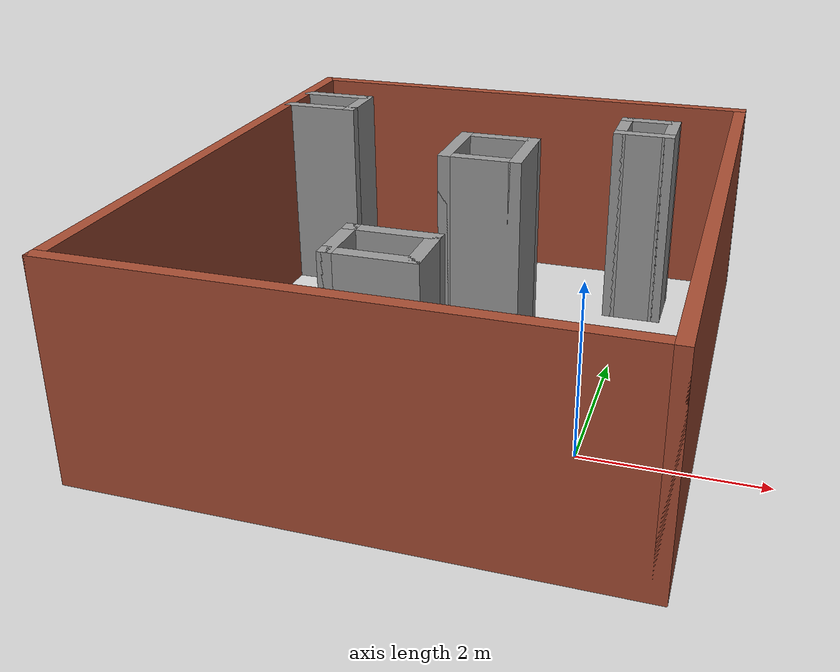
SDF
<?xml version='1.0'?>
<sdf version='1.7'>
  <model name='shiyan'>
    <pose>-1.805 1.485 0 0 -0 0</pose>
    <link name='Wall_10'>
      <collision name='Wall_10_Collision'>
        <geometry>
          <box>
            <size>6 0.15 2.5</size>
          </box>
        </geometry>
        <pose>0 0 1.25 0 -0 0</pose>
      </collision>
      <visual name='Wall_10_Visual'>
        <pose>0 0 1.25 0 -0 0</pose>
        <geometry>
          <box>
            <size>6 0.15 2.5</size>
          </box>
        </geometry>
        <material>
          <script>
            <uri>file://media/materials/scripts/gazebo.material</uri>
            <name>Gazebo/Bricks</name>
          </script>
          <ambient>1 1 1 1</ambient>
        </material>
        <meta>
          <layer>0</layer>
        </meta>
      </visual>
      <pose>0 3.425 0 0 -0 3.14159</pose>
    </link>
    <link name='Wall_11'>
      <collision name='Wall_11_Collision'>
        <geometry>
          <box>
            <size>7 0.15 2.5</size>
          </box>
        </geometry>
        <pose>0 0 1.25 0 -0 0</pose>
      </collision>
      <visual name='Wall_11_Visual'>
        <pose>0 0 1.25 0 -0 0</pose>
        <geometry>
          <box>
            <size>7 0.15 2.5</size>
          </box>
        </geometry>
        <material>
          <script>
            <uri>file://media/materials/scripts/gazebo.material</uri>
            <name>Gazebo/Bricks</name>
          </script>
          <ambient>1 1 1 1</ambient>
        </material>
        <meta>
          <layer>0</layer>
        </meta>
      </visual>
      <pose>-2.925 -0 0 0 -0 -1.5708</pose>
    </link>
    <link name='Wall_13'>
      <collision name='Wall_13_Collision'>
        <geometry>
          <box>
            <size>1 0.15 2.5</size>
          </box>
        </geometry>
        <pose>0 0 1.25 0 -0 0</pose>
      </collision>
      <visual name='Wall_13_Visual'>
        <pose>0 0 1.25 0 -0 0</pose>
        <geometry>
          <box>
            <size>1 0.15 2.5</size>
          </box>
        </geometry>
        <material>
          <script>
            <uri>file://media/materials/scripts/gazebo.material</uri>
            <name>Gazebo/Grey</name>
          </script>
          <ambient>1 1 1 1</ambient>
        </material>
        <meta>
          <layer>0</layer>
        </meta>
      </visual>
      <pose>-2.458 2.59167 0 0 -0 0</pose>
    </link>
    <link name='Wall_14'>
      <collision name='Wall_14_Collision'>
        <geometry>
          <box>
            <size>0.75 0.15 2.5</size>
          </box>
        </geometry>
        <pose>0 0 1.25 0 -0 0</pose>
      </collision>
      <visual name='Wall_14_Visual'>
        <pose>0 0 1.25 0 -0 0</pose>
        <geometry>
          <box>
            <size>0.75 0.15 2.5</size>
          </box>
        </geometry>
        <material>
          <script>
            <uri>file://media/materials/scripts/gazebo.material</uri>
            <name>Gazebo/Grey</name>
          </script>
          <ambient>1 1 1 1</ambient>
        </material>
        <meta>
          <layer>0</layer>
        </meta>
      </visual>
      <pose>-2.033 2.29167 0 0 -0 -1.5708</pose>
    </link>
    <link name='Wall_15'>
      <collision name='Wall_15_Collision'>
        <geometry>
          <box>
            <size>1 0.15 2.5</size>
          </box>
        </geometry>
        <pose>0 0 1.25 0 -0 0</pose>
      </collision>
      <visual name='Wall_15_Visual'>
        <pose>0 0 1.25 0 -0 0</pose>
        <geometry>
          <box>
            <size>1 0.15 2.5</size>
          </box>
        </geometry>
        <material>
          <script>
            <uri>file://media/materials/scripts/gazebo.material</uri>
            <name>Gazebo/Grey</name>
          </script>
          <ambient>1 1 1 1</ambient>
        </material>
        <meta>
          <layer>0</layer>
        </meta>
      </visual>
      <pose>-2.458 1.99167 0 0 -0 3.14159</pose>
    </link>
    <link name='Wall_22'>
      <collision name='Wall_22_Collision'>
        <geometry>
          <box>
            <size>0.75 0.15 2.5</size>
          </box>
        </geometry>
        <pose>0 0 1.25 0 -0 0</pose>
      </collision>
      <visual name='Wall_22_Visual'>
        <pose>0 0 1.25 0 -0 0</pose>
        <geometry>
          <box>
            <size>0.75 0.15 2.5</size>
          </box>
        </geometry>
        <material>
          <script>
            <uri>file://media/materials/scripts/gazebo.material</uri>
            <name>Gazebo/Grey</name>
          </script>
          <ambient>1 1 1 1</ambient>
        </material>
        <meta>
          <layer>0</layer>
        </meta>
      </visual>
      <pose>-0.416899 -2.25574 0 0 -0 -1.5708</pose>
    </link>
    <link name='Wall_23'>
      <collision name='Wall_23_Collision'>
        <geometry>
          <box>
            <size>1 0.15 2.5</size>
          </box>
        </geometry>
        <pose>0 0 1.25 0 -0 0</pose>
      </collision>
      <visual name='Wall_23_Visual'>
        <pose>0 0 1.25 0 -0 0</pose>
        <geometry>
          <box>
            <size>1 0.15 2.5</size>
          </box>
        </geometry>
        <material>
          <script>
            <uri>file://media/materials/scripts/gazebo.material</uri>
            <name>Gazebo/Grey</name>
          </script>
          <ambient>1 1 1 1</ambient>
        </material>
        <meta>
          <layer>0</layer>
        </meta>
      </visual>
      <pose>0.008101 -2.55574 0 0 -0 0</pose>
    </link>
    <link name='Wall_24'>
      <collision name='Wall_24_Collision'>
        <geometry>
          <box>
            <size>0.75 0.15 2.5</size>
          </box>
        </geometry>
        <pose>0 0 1.25 0 -0 0</pose>
      </collision>
      <visual name='Wall_24_Visual'>
        <pose>0 0 1.25 0 -0 0</pose>
        <geometry>
          <box>
            <size>0.75 0.15 2.5</size>
          </box>
        </geometry>
        <material>
          <script>
            <uri>file://media/materials/scripts/gazebo.material</uri>
            <name>Gazebo/Grey</name>
          </script>
          <ambient>1 1 1 1</ambient>
        </material>
        <meta>
          <layer>0</layer>
        </meta>
      </visual>
      <pose>0.433101 -2.25574 0 0 -0 1.5708</pose>
    </link>
    <link name='Wall_25'>
      <collision name='Wall_25_Collision'>
        <geometry>
          <box>
            <size>1 0.15 2.5</size>
          </box>
        </geometry>
        <pose>0 0 1.25 0 -0 0</pose>
      </collision>
      <visual name='Wall_25_Visual'>
        <pose>0 0 1.25 0 -0 0</pose>
        <geometry>
          <box>
            <size>1 0.15 2.5</size>
          </box>
        </geometry>
        <material>
          <script>
            <uri>file://media/materials/scripts/gazebo.material</uri>
            <name>Gazebo/Grey</name>
          </script>
          <ambient>1 1 1 1</ambient>
        </material>
        <meta>
          <layer>0</layer>
        </meta>
      </visual>
      <pose>0.008101 -1.95574 0 0 -0 3.14159</pose>
    </link>
    <link name='Wall_30'>
      <collision name='Wall_30_Collision'>
        <geometry>
          <box>
            <size>1 0.15 2.5</size>
          </box>
        </geometry>
        <pose>0 0 1.25 0 -0 0</pose>
      </collision>
      <visual name='Wall_30_Visual'>
        <pose>0 0 1.25 0 -0 0</pose>
        <geometry>
          <box>
            <size>1 0.15 2.5</size>
          </box>
        </geometry>
        <material>
          <script>
            <uri>file://media/materials/scripts/gazebo.material</uri>
            <name>Gazebo/Grey</name>
          </script>
          <ambient>1 1 1 1</ambient>
        </material>
        <meta>
          <layer>0</layer>
        </meta>
      </visual>
      <pose>-0.229535 0.909858 0 0 -0 -1.5708</pose>
    </link>
    <link name='Wall_31'>
      <collision name='Wall_31_Collision'>
        <geometry>
          <box>
            <size>1 0.15 2.5</size>
          </box>
        </geometry>
        <pose>0 0 1.25 0 -0 0</pose>
      </collision>
      <visual name='Wall_31_Visual'>
        <pose>0 0 1.25 0 -0 0</pose>
        <geometry>
          <box>
            <size>1 0.15 2.5</size>
          </box>
        </geometry>
        <material>
          <script>
            <uri>file://media/materials/scripts/gazebo.material</uri>
            <name>Gazebo/Grey</name>
          </script>
          <ambient>1 1 1 1</ambient>
        </material>
        <meta>
          <layer>0</layer>
        </meta>
      </visual>
      <pose>0.195465 0.484858 0 0 -0 0</pose>
    </link>
    <link name='Wall_32'>
      <collision name='Wall_32_Collision'>
        <geometry>
          <box>
            <size>1 0.15 2.5</size>
          </box>
        </geometry>
        <pose>0 0 1.25 0 -0 0</pose>
      </collision>
      <visual name='Wall_32_Visual'>
        <pose>0 0 1.25 0 -0 0</pose>
        <geometry>
          <box>
            <size>1 0.15 2.5</size>
          </box>
        </geometry>
        <material>
          <script>
            <uri>file://media/materials/scripts/gazebo.material</uri>
            <name>Gazebo/Grey</name>
          </script>
          <ambient>1 1 1 1</ambient>
        </material>
        <meta>
          <layer>0</layer>
        </meta>
      </visual>
      <pose>0.620465 0.909858 0 0 -0 1.5708</pose>
    </link>
    <link name='Wall_33'>
      <collision name='Wall_33_Collision'>
        <geometry>
          <box>
            <size>1 0.15 2.5</size>
          </box>
        </geometry>
        <pose>0 0 1.25 0 -0 0</pose>
      </collision>
      <visual name='Wall_33_Visual'>
        <pose>0 0 1.25 0 -0 0</pose>
        <geometry>
          <box>
            <size>1 0.15 2.5</size>
          </box>
        </geometry>
        <material>
          <script>
            <uri>file://media/materials/scripts/gazebo.material</uri>
            <name>Gazebo/Grey</name>
          </script>
          <ambient>1 1 1 1</ambient>
        </material>
        <meta>
          <layer>0</layer>
        </meta>
      </visual>
      <pose>0.195465 1.33486 0 0 -0 3.14159</pose>
    </link>
    <link name='Wall_41'>
      <collision name='Wall_41_Collision'>
        <geometry>
          <box>
            <size>0.75 0.15 2.5</size>
          </box>
        </geometry>
        <pose>0 0 1.25 0 -0 0</pose>
      </collision>
      <visual name='Wall_41_Visual'>
        <pose>0 0 1.25 0 -0 0</pose>
        <geometry>
          <box>
            <size>0.75 0.15 2.5</size>
          </box>
        </geometry>
        <material>
          <script>
            <uri>file://media/materials/scripts/gazebo.material</uri>
            <name>Gazebo/Grey</name>
          </script>
          <ambient>1 1 1 1</ambient>
        </material>
        <meta>
          <layer>0</layer>
        </meta>
      </visual>
      <pose>1.57058 2.26653 0 0 -0 -1.5708</pose>
    </link>
    <link name='Wall_42'>
      <collision name='Wall_42_Collision'>
        <geometry>
          <box>
            <size>0.75 0.15 2.5</size>
          </box>
        </geometry>
        <pose>0 0 1.25 0 -0 0</pose>
      </collision>
      <visual name='Wall_42_Visual'>
        <pose>0 0 1.25 0 -0 0</pose>
        <geometry>
          <box>
            <size>0.75 0.15 2.5</size>
          </box>
        </geometry>
        <material>
          <script>
            <uri>file://media/materials/scripts/gazebo.material</uri>
            <name>Gazebo/Grey</name>
          </script>
          <ambient>1 1 1 1</ambient>
        </material>
        <meta>
          <layer>0</layer>
        </meta>
      </visual>
      <pose>1.87058 1.96653 0 0 -0 0</pose>
    </link>
    <link name='Wall_43'>
      <collision name='Wall_43_Collision'>
        <geometry>
          <box>
            <size>0.75 0.15 2.5</size>
          </box>
        </geometry>
        <pose>0 0 1.25 0 -0 0</pose>
      </collision>
      <visual name='Wall_43_Visual'>
        <pose>0 0 1.25 0 -0 0</pose>
        <geometry>
          <box>
            <size>0.75 0.15 2.5</size>
          </box>
        </geometry>
        <material>
          <script>
            <uri>file://media/materials/scripts/gazebo.material</uri>
            <name>Gazebo/Grey</name>
          </script>
          <ambient>1 1 1 1</ambient>
        </material>
        <meta>
          <layer>0</layer>
        </meta>
      </visual>
      <pose>2.17058 2.26653 0 0 -0 1.5708</pose>
    </link>
    <link name='Wall_44'>
      <collision name='Wall_44_Collision'>
        <geometry>
          <box>
            <size>0.75 0.15 2.5</size>
          </box>
        </geometry>
        <pose>0 0 1.25 0 -0 0</pose>
      </collision>
      <visual name='Wall_44_Visual'>
        <pose>0 0 1.25 0 -0 0</pose>
        <geometry>
          <box>
            <size>0.75 0.15 2.5</size>
          </box>
        </geometry>
        <material>
          <script>
            <uri>file://media/materials/scripts/gazebo.material</uri>
            <name>Gazebo/Grey</name>
          </script>
          <ambient>1 1 1 1</ambient>
        </material>
        <meta>
          <layer>0</layer>
        </meta>
      </visual>
      <pose>1.87058 2.56653 0 0 -0 3.14159</pose>
    </link>
    <link name='Wall_5'>
      <collision name='Wall_5_Collision'>
        <geometry>
          <box>
            <size>6 0.15 2.5</size>
          </box>
        </geometry>
        <pose>0 0 1.25 0 -0 0</pose>
      </collision>
      <visual name='Wall_5_Visual'>
        <pose>0 0 1.25 0 -0 0</pose>
        <geometry>
          <box>
            <size>6 0.15 2.5</size>
          </box>
        </geometry>
        <material>
          <script>
            <uri>file://media/materials/scripts/gazebo.material</uri>
            <name>Gazebo/Bricks</name>
          </script>
          <ambient>1 1 1 1</ambient>
        </material>
        <meta>
          <layer>0</layer>
        </meta>
      </visual>
      <pose>0 -3.425 0 0 -0 0</pose>
    </link>
    <link name='Wall_9'>
      <collision name='Wall_9_Collision'>
        <geometry>
          <box>
            <size>7 0.15 2.5</size>
          </box>
        </geometry>
        <pose>0 0 1.25 0 -0 0</pose>
      </collision>
      <visual name='Wall_9_Visual'>
        <pose>0 0 1.25 0 -0 0</pose>
        <geometry>
          <box>
            <size>7 0.15 2.5</size>
          </box>
        </geometry>
        <material>
          <script>
            <uri>file://media/materials/scripts/gazebo.material</uri>
            <name>Gazebo/Bricks</name>
          </script>
          <ambient>1 1 1 1</ambient>
        </material>
        <meta>
          <layer>0</layer>
        </meta>
      </visual>
      <pose>2.925 -0 0 0 -0 1.5708</pose>
    </link>
    <static>1</static>
  </model>
</sdf>
